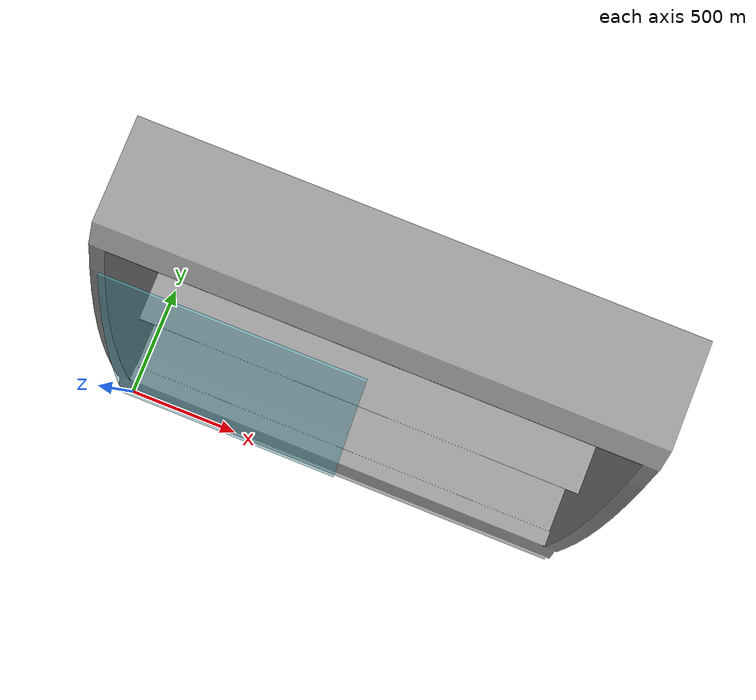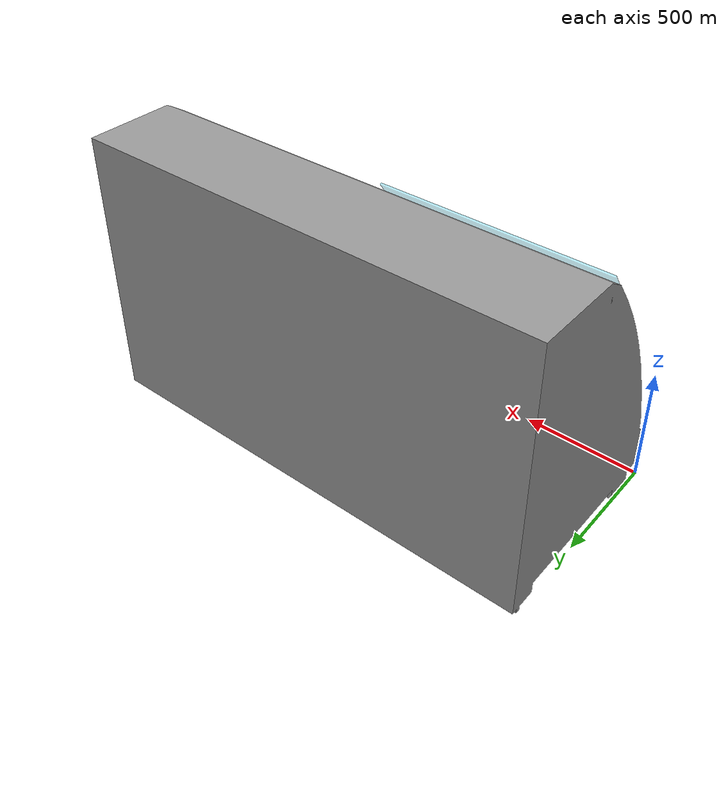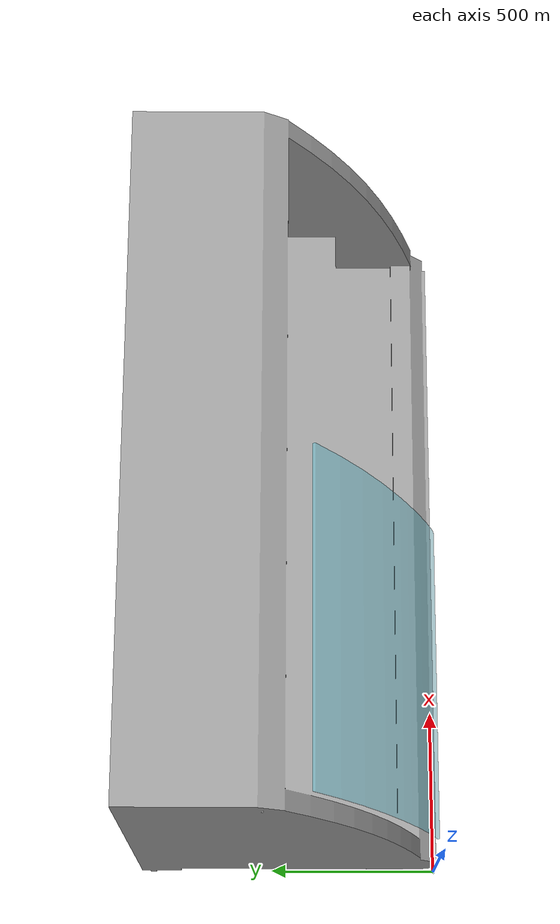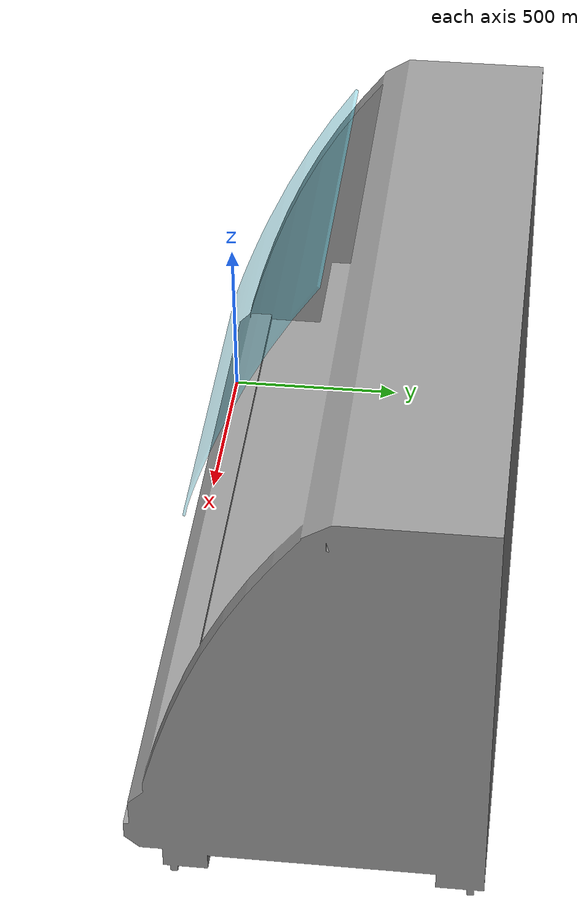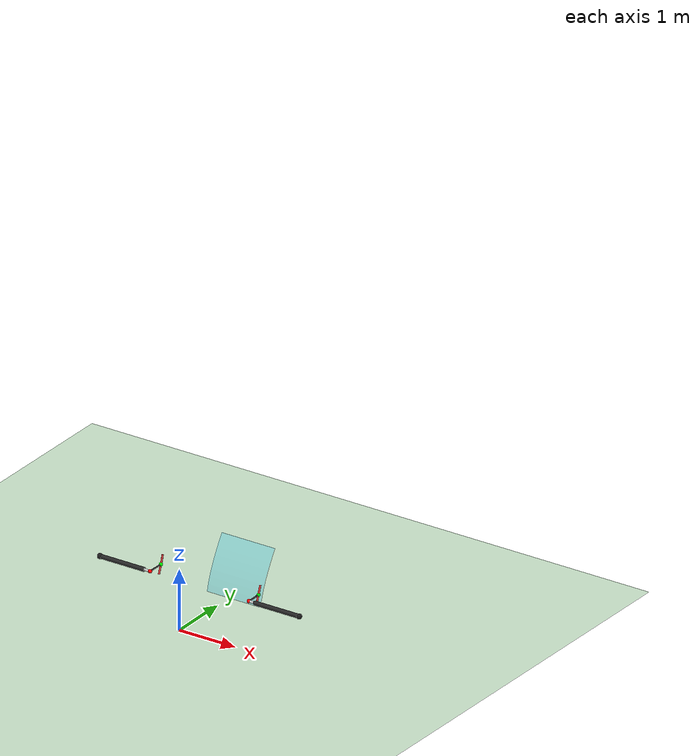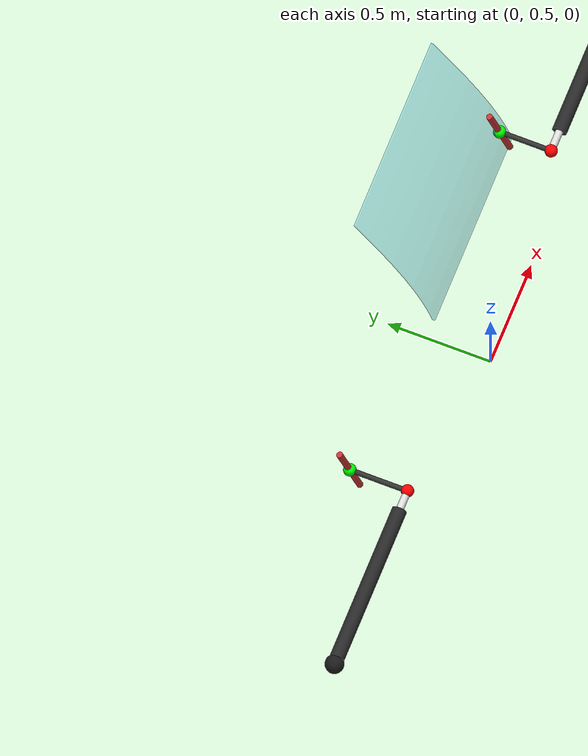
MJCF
<mujoco model="Test_osaka_pneumatic_horizontal">

  <option timestep="0.002" gravity="0 0 -9.81" />
  <compiler angle="radian"/>

  <asset>
    <mesh name="frigo_mesh" file="osaka_corpo.obj"/>
    <mesh name="porta_sx_mesh" file="osaka_portasx.obj"/>
    <mesh name="porta_dx_mesh" file="osaka_portadx.obj"/>
  </asset>

  <worldbody>
    <geom name="pavimento" type="plane" size="5 5 0.1" rgba="0.8 0.9 0.8 1"/>
    <light directional="true" diffuse="0.8 0.8 0.8" specular="0.2 0.2 0.2" pos="0 0 5" dir="0 0 -1" castshadow="false"/>

    <!-- Pneumatico orizzontale porta sinistra -->
    <body name="supporto_pneumatico_sx" pos="-1.70 0.55 0.50">
        <geom name="supporto_base_sx" type="sphere" pos="-0.10 0 0" size="0.045" rgba="0.1 0.1 0.1 1" contype="0" conaffinity="0"/>
        <site name="base_cilindro_sx" pos="-0.1 0 0" size="0.035" rgba="1 0 0 1"/>

        <body name="canna_cilindro_sx" pos="0 0 0" zaxis="1 0 0">
            <inertial pos="0 0 0.30" mass="1.5" diaginertia="0.060 0.060 0.010"/>
            <geom name="canna_visual_sx" type="cylinder" pos="0 0 0.30" size="0.035 0.40" rgba="0.15 0.15 0.15 1" contype="0" conaffinity="0"/>

            <body name="stelo_cilindro_sx" pos="0 0 0">
            <joint name="corsa_cilindro_sx" type="slide" axis="0 0 1" range="0 0.70" limited="true" damping="20" frictionloss="5"/>
            <inertial pos="0 0 0.35" mass="0.8" diaginertia="0.018 0.018 0.003"/>
            <geom name="stelo_visual_sx" type="cylinder" pos="0 0 0.35" size="0.018 0.45" rgba="0.85 0.85 0.85 1" contype="0" conaffinity="0"/>

            <body name="staffa_stelo_sx" pos="0 0 0.80">
            <joint name="snodo_stelo_staffa_sx" type="ball" damping="2.0" limited="true" range="0 0.0174533" solreflimit="0.004 1" solimplimit="0.95 0.99 0.001"/>
            <inertial pos="0 0.14 0" mass="0.25" diaginertia="0.002 0.002 0.002"/>

            <!-- Snodo rosso tra stelo e staffa -->
            <geom name="snodo_stelo_staffa_visual_sx" type="sphere" pos="0 0 0" size="0.03" rgba="1 0 0 1" contype="0" conaffinity="0"/>

            <!-- Staffa in direzione +y verso la maniglia -->
            <geom name="staffa_cilindro_sx" type="capsule" fromto="0 0 0 0 0.28 0" size="0.012" rgba="0.2 0.2 0.2 1" contype="0" conaffinity="0"/>

            <!-- Punto verde di aggancio staffa-maniglia -->
            <geom name="aggrappo_staffa_maniglia_sx_visual" type="sphere" pos="0 0.28 0" size="0.03" rgba="0 1 0 1" contype="0" conaffinity="0"/>
            <site name="aggrappo_staffa_maniglia_sx" pos="0 0.28 0" size="0.025" rgba="0 1 0 0.5"/>
            </body>
            </body>
        </body>
    </body>

    <!-- Pneumatico orizzontale porta destra -->
    <body name="supporto_pneumatico_dx" pos="1.67 0.55 0.50">
        <geom name="supporto_base_dx" type="sphere" pos="0.1 0 0" size="0.045" rgba="0.1 0.1 0.1 1" contype="0" conaffinity="0"/>
        <site name="base_cilindro_dx" pos="0.1 0 0" size="0.035" rgba="1 0 0 1"/>

        <body name="canna_cilindro_dx" pos="0 0 0" zaxis="-1 0 0">
            <inertial pos="0 0 0.30" mass="1.5" diaginertia="0.060 0.060 0.010"/>
            <geom name="canna_visual_dx" type="cylinder" pos="0 0 0.30" size="0.035 0.40" rgba="0.15 0.15 0.15 1" contype="0" conaffinity="0"/>

            <body name="stelo_cilindro_dx" pos="0 0 0">
            <joint name="corsa_cilindro_dx" type="slide" axis="0 0 1" range="0 0.70" limited="true" damping="20" frictionloss="5"/>
            <inertial pos="0 0 0.35" mass="0.8" diaginertia="0.018 0.018 0.003"/>
            <geom name="stelo_visual_dx" type="cylinder" pos="0 0 0.35" size="0.018 0.45" rgba="0.85 0.85 0.85 1" contype="0" conaffinity="0"/>

            <body name="staffa_stelo_dx" pos="0 0 0.80">
            <joint name="snodo_stelo_staffa_dx" type="ball" damping="2.0" limited="true" range="0 0.0174533" solreflimit="0.004 1" solimplimit="0.95 0.99 0.001"/>
            <inertial pos="0 0.125 0" mass="0.25" diaginertia="0.002 0.002 0.002"/>

            <!-- Snodo rosso tra stelo e staffa -->
            <geom name="snodo_stelo_staffa_visual_dx" type="sphere" pos="0 0 0" size="0.03" rgba="1 0 0 1" contype="0" conaffinity="0"/>

            <!-- Staffa in direzione +y verso la maniglia -->
            <geom name="staffa_cilindro_dx" type="capsule" fromto="0 0 0 0 0.25 0" size="0.012" rgba="0.2 0.2 0.2 1" contype="0" conaffinity="0"/>

            <!-- Punto verde di aggancio staffa-maniglia -->
            <geom name="aggrappo_staffa_maniglia_dx_visual" type="sphere" pos="0 0.25 0" size="0.03" rgba="0 1 0 1" contype="0" conaffinity="0"/>
            <site name="aggrappo_staffa_maniglia_dx" pos="0 0.25 0" size="0.025" rgba="0 1 0 0.5"/>
            </body>
            </body>
        </body>
    </body>

    <!-- Banco frigo Osaka -->
    <body name="banco_frigo" pos="-1 0.7 0">
      <geom type="mesh" mesh="frigo_mesh" rgba="0.6 0.6 0.6 1" contype="0" conaffinity="0"/>

      <body name="porta_sx" pos="0 0 0">
        <joint name="slide_sx" type="slide" axis="1 0 0" range="0 0.8" limited="true" damping="3" frictionloss="33"/>
        <inertial pos="0.48 0.3 0.7" mass="20" diaginertia="1.38033 2.88433 1.50433"/>
        <geom type="mesh" mesh="porta_sx_mesh" rgba="0.3 0.8 0.9 0.4" contype="0" conaffinity="0"/>

        <body name="maniglia_sx" pos="0.1 0.13 0.5" euler="2.8 0 0">
          <inertial pos="0 0 0" mass="0.2" diaginertia="0.001 0.001 0.001"/>
          <geom name="manigliasx" type="cylinder" size="0.015 0.15" rgba="0.8 0.2 0.2 1" contype="0" conaffinity="0"/>
          <site name="target_manigliasx" pos="0 0 0" size="0.02" rgba="1 0 0 0.5"/>
        </body>
      </body>

      <body name="porta_dx" pos="0 0 0">
        <joint name="slide_dx" type="slide" axis="-1 0 0" range="0 0.8" limited="true" damping="3" frictionloss="33"/>
        <inertial pos="1.48 0.3 0.7" mass="20" diaginertia="1.38033 2.88433 1.50433"/>
        <geom type="mesh" mesh="porta_dx_mesh" rgba="0.3 0.8 0.9 0.4" contype="0" conaffinity="0"/>

        <body name="maniglia_dx" pos="1.87 0.1 0.5" euler="2.8 0 0">
          <inertial pos="0 0 0" mass="0.2" diaginertia="0.001 0.001 0.001"/>
          <geom name="manigliadx" type="cylinder" size="0.015 0.15" rgba="0.8 0.2 0.2 1" contype="0" conaffinity="0"/>
          <site name="target_manigliadx" pos="0 0 0" size="0.02" rgba="1 0 0 0.5"/>
        </body>
      </body>
    </body>
  </worldbody>

  <equality>
    <connect name="connessione_staffa_maniglia_sx" site1="aggrappo_staffa_maniglia_sx" site2="target_manigliasx" solimp="0.9 0.95 0.001" solref="0.02 1"/>
    <connect name="connessione_staffa_maniglia_dx" site1="aggrappo_staffa_maniglia_dx" site2="target_manigliadx" solimp="0.9 0.95 0.001" solref="0.02 1"/>
  </equality>

  <actuator>
    <motor name="forza_pneumatica_sx" joint="corsa_cilindro_sx" gear="1" ctrllimited="true" ctrlrange="-200 200"/>
    <motor name="forza_pneumatica_dx" joint="corsa_cilindro_dx" gear="1" ctrllimited="true" ctrlrange="-200 200"/>
  </actuator>

</mujoco>
